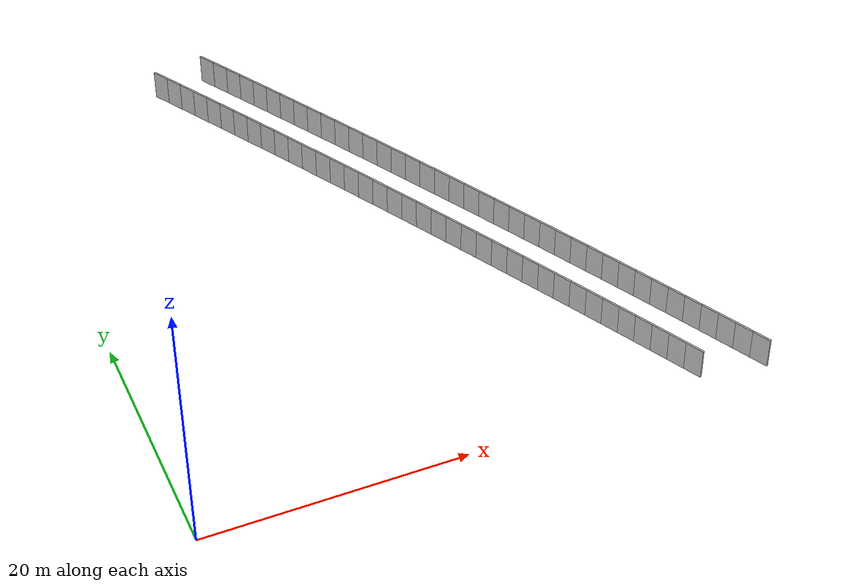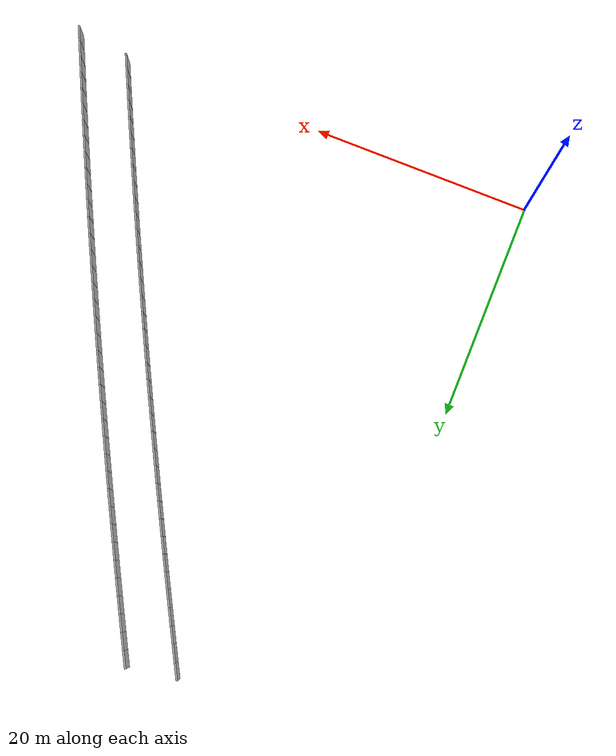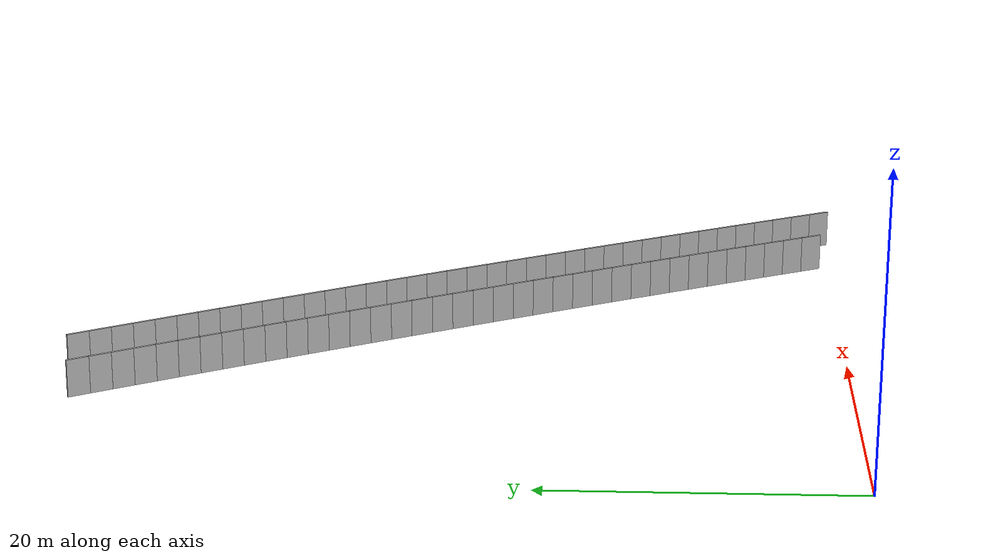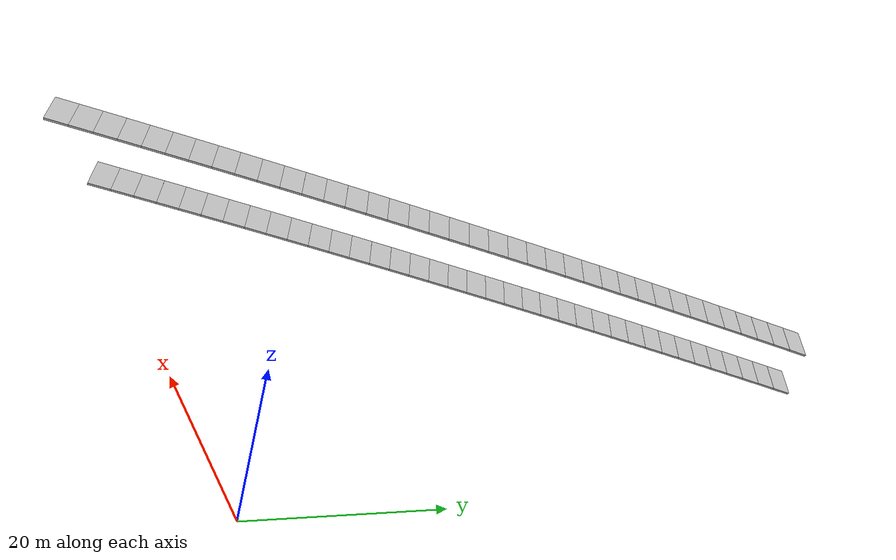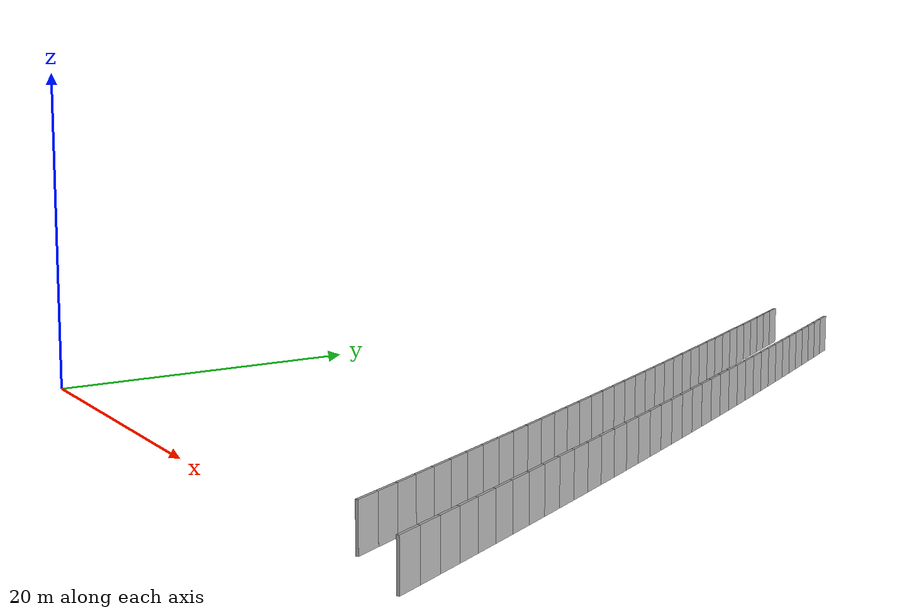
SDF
<?xml version="1.0" ?>
<sdf version="1.6">
  <model name="sps_4336">
    <pose frame="">0 0 0 0 -0 0</pose>
    <static>1</static>
    <self_collide>0</self_collide>
    <allow_auto_disable>0</allow_auto_disable>
    <link name="Wall10209">
      <kinematic>0</kinematic>
      <gravity>1</gravity>
      <self_collide>0</self_collide>
      <collision name="collision">
        <geometry>
          <box>
            <size>1.49655 0.15 2.5</size>
          </box>
        </geometry>
        <pose frame="">0 0 0 0 -0 0</pose>
      </collision>
      <visual name="visual">
        <geometry>
          <box>
            <size>1.49655 0.15 2.5</size>
          </box>
        </geometry>
        <pose frame="">0 0 0 0 -0 0</pose>
        <cast_shadows>1</cast_shadows>
        <transparency>0.0</transparency>
      </visual>
      <pose frame="">38.3077 1.14909 1.25 0 -0 2.0256</pose>
    </link>
    <link name="Wall10210">
      <kinematic>0</kinematic>
      <gravity>1</gravity>
      <self_collide>0</self_collide>
      <collision name="collision">
        <geometry>
          <box>
            <size>1.49631 0.15 2.5</size>
          </box>
        </geometry>
        <pose frame="">0 0 0 0 -0 0</pose>
      </collision>
      <visual name="visual">
        <geometry>
          <box>
            <size>1.49631 0.15 2.5</size>
          </box>
        </geometry>
        <pose frame="">0 0 0 0 -0 0</pose>
        <cast_shadows>1</cast_shadows>
        <transparency>0.0</transparency>
      </visual>
      <pose frame="">37.6493 2.4929 1.25 0 -0 2.02713</pose>
    </link>
    <link name="Wall10211">
      <kinematic>0</kinematic>
      <gravity>1</gravity>
      <self_collide>0</self_collide>
      <collision name="collision">
        <geometry>
          <box>
            <size>1.4966 0.15 2.5</size>
          </box>
        </geometry>
        <pose frame="">0 0 0 0 -0 0</pose>
      </collision>
      <visual name="visual">
        <geometry>
          <box>
            <size>1.4966 0.15 2.5</size>
          </box>
        </geometry>
        <pose frame="">0 0 0 0 -0 0</pose>
        <cast_shadows>1</cast_shadows>
        <transparency>0.0</transparency>
      </visual>
      <pose frame="">36.9889 3.83571 1.25 0 -0 2.02872</pose>
    </link>
    <link name="Wall10212">
      <kinematic>0</kinematic>
      <gravity>1</gravity>
      <self_collide>0</self_collide>
      <collision name="collision">
        <geometry>
          <box>
            <size>1.49645 0.15 2.5</size>
          </box>
        </geometry>
        <pose frame="">0 0 0 0 -0 0</pose>
      </collision>
      <visual name="visual">
        <geometry>
          <box>
            <size>1.49645 0.15 2.5</size>
          </box>
        </geometry>
        <pose frame="">0 0 0 0 -0 0</pose>
        <cast_shadows>1</cast_shadows>
        <transparency>0.0</transparency>
      </visual>
      <pose frame="">36.3262 5.1775 1.25 0 -0 2.03036</pose>
    </link>
    <link name="Wall10213">
      <kinematic>0</kinematic>
      <gravity>1</gravity>
      <self_collide>0</self_collide>
      <collision name="collision">
        <geometry>
          <box>
            <size>1.49649 0.15 2.5</size>
          </box>
        </geometry>
        <pose frame="">0 0 0 0 -0 0</pose>
      </collision>
      <visual name="visual">
        <geometry>
          <box>
            <size>1.49649 0.15 2.5</size>
          </box>
        </geometry>
        <pose frame="">0 0 0 0 -0 0</pose>
        <cast_shadows>1</cast_shadows>
        <transparency>0.0</transparency>
      </visual>
      <pose frame="">35.6614 6.5182 1.25 0 -0 2.03189</pose>
    </link>
    <link name="Wall10214">
      <kinematic>0</kinematic>
      <gravity>1</gravity>
      <self_collide>0</self_collide>
      <collision name="collision">
        <geometry>
          <box>
            <size>1.49663 0.15 2.5</size>
          </box>
        </geometry>
        <pose frame="">0 0 0 0 -0 0</pose>
      </collision>
      <visual name="visual">
        <geometry>
          <box>
            <size>1.49663 0.15 2.5</size>
          </box>
        </geometry>
        <pose frame="">0 0 0 0 -0 0</pose>
        <cast_shadows>1</cast_shadows>
        <transparency>0.0</transparency>
      </visual>
      <pose frame="">34.9943 7.85789 1.25 0 -0 2.03362</pose>
    </link>
    <link name="Wall10215">
      <kinematic>0</kinematic>
      <gravity>1</gravity>
      <self_collide>0</self_collide>
      <collision name="collision">
        <geometry>
          <box>
            <size>1.49646 0.15 2.5</size>
          </box>
        </geometry>
        <pose frame="">0 0 0 0 -0 0</pose>
      </collision>
      <visual name="visual">
        <geometry>
          <box>
            <size>1.49646 0.15 2.5</size>
          </box>
        </geometry>
        <pose frame="">0 0 0 0 -0 0</pose>
        <cast_shadows>1</cast_shadows>
        <transparency>0.0</transparency>
      </visual>
      <pose frame="">34.3252 9.19649 1.25 0 -0 2.03514</pose>
    </link>
    <link name="Wall10216">
      <kinematic>0</kinematic>
      <gravity>1</gravity>
      <self_collide>0</self_collide>
      <collision name="collision">
        <geometry>
          <box>
            <size>1.49647 0.15 2.5</size>
          </box>
        </geometry>
        <pose frame="">0 0 0 0 -0 0</pose>
      </collision>
      <visual name="visual">
        <geometry>
          <box>
            <size>1.49647 0.15 2.5</size>
          </box>
        </geometry>
        <pose frame="">0 0 0 0 -0 0</pose>
        <cast_shadows>1</cast_shadows>
        <transparency>0.0</transparency>
      </visual>
      <pose frame="">33.654 10.534 1.25 0 -0 2.03669</pose>
    </link>
    <link name="Wall10217">
      <kinematic>0</kinematic>
      <gravity>1</gravity>
      <self_collide>0</self_collide>
      <collision name="collision">
        <geometry>
          <box>
            <size>1.49664 0.15 2.5</size>
          </box>
        </geometry>
        <pose frame="">0 0 0 0 -0 0</pose>
      </collision>
      <visual name="visual">
        <geometry>
          <box>
            <size>1.49664 0.15 2.5</size>
          </box>
        </geometry>
        <pose frame="">0 0 0 0 -0 0</pose>
        <cast_shadows>1</cast_shadows>
        <transparency>0.0</transparency>
      </visual>
      <pose frame="">32.9806 11.8705 1.25 0 -0 2.03837</pose>
    </link>
    <link name="Wall10218">
      <kinematic>0</kinematic>
      <gravity>1</gravity>
      <self_collide>0</self_collide>
      <collision name="collision">
        <geometry>
          <box>
            <size>1.49643 0.15 2.5</size>
          </box>
        </geometry>
        <pose frame="">0 0 0 0 -0 0</pose>
      </collision>
      <visual name="visual">
        <geometry>
          <box>
            <size>1.49643 0.15 2.5</size>
          </box>
        </geometry>
        <pose frame="">0 0 0 0 -0 0</pose>
        <cast_shadows>1</cast_shadows>
        <transparency>0.0</transparency>
      </visual>
      <pose frame="">32.3051 13.2059 1.25 0 -0 2.03981</pose>
    </link>
    <link name="Wall10219">
      <kinematic>0</kinematic>
      <gravity>1</gravity>
      <self_collide>0</self_collide>
      <collision name="collision">
        <geometry>
          <box>
            <size>1.49623 0.15 2.5</size>
          </box>
        </geometry>
        <pose frame="">0 0 0 0 -0 0</pose>
      </collision>
      <visual name="visual">
        <geometry>
          <box>
            <size>1.49623 0.15 2.5</size>
          </box>
        </geometry>
        <pose frame="">0 0 0 0 -0 0</pose>
        <cast_shadows>1</cast_shadows>
        <transparency>0.0</transparency>
      </visual>
      <pose frame="">31.6275 14.54 1.25 0 -0 2.0417</pose>
    </link>
    <link name="Wall10220">
      <kinematic>0</kinematic>
      <gravity>1</gravity>
      <self_collide>0</self_collide>
      <collision name="collision">
        <geometry>
          <box>
            <size>1.49663 0.15 2.5</size>
          </box>
        </geometry>
        <pose frame="">0 0 0 0 -0 0</pose>
      </collision>
      <visual name="visual">
        <geometry>
          <box>
            <size>1.49663 0.15 2.5</size>
          </box>
        </geometry>
        <pose frame="">0 0 0 0 -0 0</pose>
        <cast_shadows>1</cast_shadows>
        <transparency>0.0</transparency>
      </visual>
      <pose frame="">30.9477 15.8731 1.25 0 -0 2.04303</pose>
    </link>
    <link name="Wall10221">
      <kinematic>0</kinematic>
      <gravity>1</gravity>
      <self_collide>0</self_collide>
      <collision name="collision">
        <geometry>
          <box>
            <size>1.49654 0.15 2.5</size>
          </box>
        </geometry>
        <pose frame="">0 0 0 0 -0 0</pose>
      </collision>
      <visual name="visual">
        <geometry>
          <box>
            <size>1.49654 0.15 2.5</size>
          </box>
        </geometry>
        <pose frame="">0 0 0 0 -0 0</pose>
        <cast_shadows>1</cast_shadows>
        <transparency>0.0</transparency>
      </visual>
      <pose frame="">30.2658 17.2053 1.25 0 -0 2.04471</pose>
    </link>
    <link name="Wall10222">
      <kinematic>0</kinematic>
      <gravity>1</gravity>
      <self_collide>0</self_collide>
      <collision name="collision">
        <geometry>
          <box>
            <size>1.49646 0.15 2.5</size>
          </box>
        </geometry>
        <pose frame="">0 0 0 0 -0 0</pose>
      </collision>
      <visual name="visual">
        <geometry>
          <box>
            <size>1.49646 0.15 2.5</size>
          </box>
        </geometry>
        <pose frame="">0 0 0 0 -0 0</pose>
        <cast_shadows>1</cast_shadows>
        <transparency>0.0</transparency>
      </visual>
      <pose frame="">29.5819 18.5364 1.25 0 -0 2.04612</pose>
    </link>
    <link name="Wall10223">
      <kinematic>0</kinematic>
      <gravity>1</gravity>
      <self_collide>0</self_collide>
      <collision name="collision">
        <geometry>
          <box>
            <size>1.49652 0.15 2.5</size>
          </box>
        </geometry>
        <pose frame="">0 0 0 0 -0 0</pose>
      </collision>
      <visual name="visual">
        <geometry>
          <box>
            <size>1.49652 0.15 2.5</size>
          </box>
        </geometry>
        <pose frame="">0 0 0 0 -0 0</pose>
        <cast_shadows>1</cast_shadows>
        <transparency>0.0</transparency>
      </visual>
      <pose frame="">28.8959 19.8664 1.25 0 -0 2.04789</pose>
    </link>
    <link name="Wall10224">
      <kinematic>0</kinematic>
      <gravity>1</gravity>
      <self_collide>0</self_collide>
      <collision name="collision">
        <geometry>
          <box>
            <size>1.49649 0.15 2.5</size>
          </box>
        </geometry>
        <pose frame="">0 0 0 0 -0 0</pose>
      </collision>
      <visual name="visual">
        <geometry>
          <box>
            <size>1.49649 0.15 2.5</size>
          </box>
        </geometry>
        <pose frame="">0 0 0 0 -0 0</pose>
        <cast_shadows>1</cast_shadows>
        <transparency>0.0</transparency>
      </visual>
      <pose frame="">28.2078 21.1953 1.25 0 -0 2.04927</pose>
    </link>
    <link name="Wall10225">
      <kinematic>0</kinematic>
      <gravity>1</gravity>
      <self_collide>0</self_collide>
      <collision name="collision">
        <geometry>
          <box>
            <size>1.49667 0.15 2.5</size>
          </box>
        </geometry>
        <pose frame="">0 0 0 0 -0 0</pose>
      </collision>
      <visual name="visual">
        <geometry>
          <box>
            <size>1.49667 0.15 2.5</size>
          </box>
        </geometry>
        <pose frame="">0 0 0 0 -0 0</pose>
        <cast_shadows>1</cast_shadows>
        <transparency>0.0</transparency>
      </visual>
      <pose frame="">27.5175 22.5232 1.25 0 -0 2.051</pose>
    </link>
    <link name="Wall10226">
      <kinematic>0</kinematic>
      <gravity>1</gravity>
      <self_collide>0</self_collide>
      <collision name="collision">
        <geometry>
          <box>
            <size>1.4964 0.15 2.5</size>
          </box>
        </geometry>
        <pose frame="">0 0 0 0 -0 0</pose>
      </collision>
      <visual name="visual">
        <geometry>
          <box>
            <size>1.4964 0.15 2.5</size>
          </box>
        </geometry>
        <pose frame="">0 0 0 0 -0 0</pose>
        <cast_shadows>1</cast_shadows>
        <transparency>0.0</transparency>
      </visual>
      <pose frame="">26.8252 23.85 1.25 0 -0 2.05243</pose>
    </link>
    <link name="Wall10227">
      <kinematic>0</kinematic>
      <gravity>1</gravity>
      <self_collide>0</self_collide>
      <collision name="collision">
        <geometry>
          <box>
            <size>1.49651 0.15 2.5</size>
          </box>
        </geometry>
        <pose frame="">0 0 0 0 -0 0</pose>
      </collision>
      <visual name="visual">
        <geometry>
          <box>
            <size>1.49651 0.15 2.5</size>
          </box>
        </geometry>
        <pose frame="">0 0 0 0 -0 0</pose>
        <cast_shadows>1</cast_shadows>
        <transparency>0.0</transparency>
      </visual>
      <pose frame="">26.1309 25.1756 1.25 0 -0 2.05424</pose>
    </link>
    <link name="Wall10228">
      <kinematic>0</kinematic>
      <gravity>1</gravity>
      <self_collide>0</self_collide>
      <collision name="collision">
        <geometry>
          <box>
            <size>1.4965 0.15 2.5</size>
          </box>
        </geometry>
        <pose frame="">0 0 0 0 -0 0</pose>
      </collision>
      <visual name="visual">
        <geometry>
          <box>
            <size>1.4965 0.15 2.5</size>
          </box>
        </geometry>
        <pose frame="">0 0 0 0 -0 0</pose>
        <cast_shadows>1</cast_shadows>
        <transparency>0.0</transparency>
      </visual>
      <pose frame="">25.4343 26.5001 1.25 0 -0 2.05571</pose>
    </link>
    <link name="Wall10229">
      <kinematic>0</kinematic>
      <gravity>1</gravity>
      <self_collide>0</self_collide>
      <collision name="collision">
        <geometry>
          <box>
            <size>1.49653 0.15 2.5</size>
          </box>
        </geometry>
        <pose frame="">0 0 0 0 -0 0</pose>
      </collision>
      <visual name="visual">
        <geometry>
          <box>
            <size>1.49653 0.15 2.5</size>
          </box>
        </geometry>
        <pose frame="">0 0 0 0 -0 0</pose>
        <cast_shadows>1</cast_shadows>
        <transparency>0.0</transparency>
      </visual>
      <pose frame="">24.7356 27.8235 1.25 0 -0 2.05741</pose>
    </link>
    <link name="Wall10230">
      <kinematic>0</kinematic>
      <gravity>1</gravity>
      <self_collide>0</self_collide>
      <collision name="collision">
        <geometry>
          <box>
            <size>1.49658 0.15 2.5</size>
          </box>
        </geometry>
        <pose frame="">0 0 0 0 -0 0</pose>
      </collision>
      <visual name="visual">
        <geometry>
          <box>
            <size>1.49658 0.15 2.5</size>
          </box>
        </geometry>
        <pose frame="">0 0 0 0 -0 0</pose>
        <cast_shadows>1</cast_shadows>
        <transparency>0.0</transparency>
      </visual>
      <pose frame="">24.0348 29.1458 1.25 0 -0 2.05887</pose>
    </link>
    <link name="Wall10231">
      <kinematic>0</kinematic>
      <gravity>1</gravity>
      <self_collide>0</self_collide>
      <collision name="collision">
        <geometry>
          <box>
            <size>1.49661 0.15 2.5</size>
          </box>
        </geometry>
        <pose frame="">0 0 0 0 -0 0</pose>
      </collision>
      <visual name="visual">
        <geometry>
          <box>
            <size>1.49661 0.15 2.5</size>
          </box>
        </geometry>
        <pose frame="">0 0 0 0 -0 0</pose>
        <cast_shadows>1</cast_shadows>
        <transparency>0.0</transparency>
      </visual>
      <pose frame="">23.332 30.4671 1.25 0 -0 2.06038</pose>
    </link>
    <link name="Wall10232">
      <kinematic>0</kinematic>
      <gravity>1</gravity>
      <self_collide>0</self_collide>
      <collision name="collision">
        <geometry>
          <box>
            <size>1.49657 0.15 2.5</size>
          </box>
        </geometry>
        <pose frame="">0 0 0 0 -0 0</pose>
      </collision>
      <visual name="visual">
        <geometry>
          <box>
            <size>1.49657 0.15 2.5</size>
          </box>
        </geometry>
        <pose frame="">0 0 0 0 -0 0</pose>
        <cast_shadows>1</cast_shadows>
        <transparency>0.0</transparency>
      </visual>
      <pose frame="">22.6271 31.7873 1.25 0 -0 2.06206</pose>
    </link>
    <link name="Wall10233">
      <kinematic>0</kinematic>
      <gravity>1</gravity>
      <self_collide>0</self_collide>
      <collision name="collision">
        <geometry>
          <box>
            <size>1.49628 0.15 2.5</size>
          </box>
        </geometry>
        <pose frame="">0 0 0 0 -0 0</pose>
      </collision>
      <visual name="visual">
        <geometry>
          <box>
            <size>1.49628 0.15 2.5</size>
          </box>
        </geometry>
        <pose frame="">0 0 0 0 -0 0</pose>
        <cast_shadows>1</cast_shadows>
        <transparency>0.0</transparency>
      </visual>
      <pose frame="">21.9201 33.1062 1.25 0 -0 2.06369</pose>
    </link>
    <link name="Wall10234">
      <kinematic>0</kinematic>
      <gravity>1</gravity>
      <self_collide>0</self_collide>
      <collision name="collision">
        <geometry>
          <box>
            <size>1.49668 0.15 2.5</size>
          </box>
        </geometry>
        <pose frame="">0 0 0 0 -0 0</pose>
      </collision>
      <visual name="visual">
        <geometry>
          <box>
            <size>1.49668 0.15 2.5</size>
          </box>
        </geometry>
        <pose frame="">0 0 0 0 -0 0</pose>
        <cast_shadows>1</cast_shadows>
        <transparency>0.0</transparency>
      </visual>
      <pose frame="">21.211 34.424 1.25 0 -0 2.06522</pose>
    </link>
    <link name="Wall10235">
      <kinematic>0</kinematic>
      <gravity>1</gravity>
      <self_collide>0</self_collide>
      <collision name="collision">
        <geometry>
          <box>
            <size>1.49651 0.15 2.5</size>
          </box>
        </geometry>
        <pose frame="">0 0 0 0 -0 0</pose>
      </collision>
      <visual name="visual">
        <geometry>
          <box>
            <size>1.49651 0.15 2.5</size>
          </box>
        </geometry>
        <pose frame="">0 0 0 0 -0 0</pose>
        <cast_shadows>1</cast_shadows>
        <transparency>0.0</transparency>
      </visual>
      <pose frame="">20.4997 35.7408 1.25 0 -0 2.06681</pose>
    </link>
    <link name="Wall10236">
      <kinematic>0</kinematic>
      <gravity>1</gravity>
      <self_collide>0</self_collide>
      <collision name="collision">
        <geometry>
          <box>
            <size>1.49651 0.15 2.5</size>
          </box>
        </geometry>
        <pose frame="">0 0 0 0 -0 0</pose>
      </collision>
      <visual name="visual">
        <geometry>
          <box>
            <size>1.49651 0.15 2.5</size>
          </box>
        </geometry>
        <pose frame="">0 0 0 0 -0 0</pose>
        <cast_shadows>1</cast_shadows>
        <transparency>0.0</transparency>
      </visual>
      <pose frame="">19.7865 37.0564 1.25 0 -0 2.06843</pose>
    </link>
    <link name="Wall10237">
      <kinematic>0</kinematic>
      <gravity>1</gravity>
      <self_collide>0</self_collide>
      <collision name="collision">
        <geometry>
          <box>
            <size>1.49634 0.15 2.5</size>
          </box>
        </geometry>
        <pose frame="">0 0 0 0 -0 0</pose>
      </collision>
      <visual name="visual">
        <geometry>
          <box>
            <size>1.49634 0.15 2.5</size>
          </box>
        </geometry>
        <pose frame="">0 0 0 0 -0 0</pose>
        <cast_shadows>1</cast_shadows>
        <transparency>0.0</transparency>
      </visual>
      <pose frame="">19.0712 38.3708 1.25 0 -0 2.06993</pose>
    </link>
    <link name="Wall10238">
      <kinematic>0</kinematic>
      <gravity>1</gravity>
      <self_collide>0</self_collide>
      <collision name="collision">
        <geometry>
          <box>
            <size>1.49651 0.15 2.5</size>
          </box>
        </geometry>
        <pose frame="">0 0 0 0 -0 0</pose>
      </collision>
      <visual name="visual">
        <geometry>
          <box>
            <size>1.49651 0.15 2.5</size>
          </box>
        </geometry>
        <pose frame="">0 0 0 0 -0 0</pose>
        <cast_shadows>1</cast_shadows>
        <transparency>0.0</transparency>
      </visual>
      <pose frame="">18.3538 39.6841 1.25 0 -0 2.0715</pose>
    </link>
    <link name="Wall10239">
      <kinematic>0</kinematic>
      <gravity>1</gravity>
      <self_collide>0</self_collide>
      <collision name="collision">
        <geometry>
          <box>
            <size>1.49655 0.15 2.5</size>
          </box>
        </geometry>
        <pose frame="">0 0 0 0 -0 0</pose>
      </collision>
      <visual name="visual">
        <geometry>
          <box>
            <size>1.49655 0.15 2.5</size>
          </box>
        </geometry>
        <pose frame="">0 0 0 0 -0 0</pose>
        <cast_shadows>1</cast_shadows>
        <transparency>0.0</transparency>
      </visual>
      <pose frame="">17.6344 40.9963 1.25 0 -0 2.07316</pose>
    </link>
    <link name="Wall10240">
      <kinematic>0</kinematic>
      <gravity>1</gravity>
      <self_collide>0</self_collide>
      <collision name="collision">
        <geometry>
          <box>
            <size>1.49639 0.15 2.5</size>
          </box>
        </geometry>
        <pose frame="">0 0 0 0 -0 0</pose>
      </collision>
      <visual name="visual">
        <geometry>
          <box>
            <size>1.49639 0.15 2.5</size>
          </box>
        </geometry>
        <pose frame="">0 0 0 0 -0 0</pose>
        <cast_shadows>1</cast_shadows>
        <transparency>0.0</transparency>
      </visual>
      <pose frame="">16.9128 42.3073 1.25 0 -0 2.07475</pose>
    </link>
    <link name="Wall10241">
      <kinematic>0</kinematic>
      <gravity>1</gravity>
      <self_collide>0</self_collide>
      <collision name="collision">
        <geometry>
          <box>
            <size>1.49651 0.15 2.5</size>
          </box>
        </geometry>
        <pose frame="">0 0 0 0 -0 0</pose>
      </collision>
      <visual name="visual">
        <geometry>
          <box>
            <size>1.49651 0.15 2.5</size>
          </box>
        </geometry>
        <pose frame="">0 0 0 0 -0 0</pose>
        <cast_shadows>1</cast_shadows>
        <transparency>0.0</transparency>
      </visual>
      <pose frame="">16.1892 43.6172 1.25 0 -0 2.07624</pose>
    </link>
    <link name="Wall10242">
      <kinematic>0</kinematic>
      <gravity>1</gravity>
      <self_collide>0</self_collide>
      <collision name="collision">
        <geometry>
          <box>
            <size>1.49681 0.15 2.5</size>
          </box>
        </geometry>
        <pose frame="">0 0 0 0 -0 0</pose>
      </collision>
      <visual name="visual">
        <geometry>
          <box>
            <size>1.49681 0.15 2.5</size>
          </box>
        </geometry>
        <pose frame="">0 0 0 0 -0 0</pose>
        <cast_shadows>1</cast_shadows>
        <transparency>0.0</transparency>
      </visual>
      <pose frame="">15.4634 44.9261 1.25 0 -0 2.07795</pose>
    </link>
    <link name="Wall10243">
      <kinematic>0</kinematic>
      <gravity>1</gravity>
      <self_collide>0</self_collide>
      <collision name="collision">
        <geometry>
          <box>
            <size>1.49648 0.15 2.5</size>
          </box>
        </geometry>
        <pose frame="">0 0 0 0 -0 0</pose>
      </collision>
      <visual name="visual">
        <geometry>
          <box>
            <size>1.49648 0.15 2.5</size>
          </box>
        </geometry>
        <pose frame="">0 0 0 0 -0 0</pose>
        <cast_shadows>1</cast_shadows>
        <transparency>0.0</transparency>
      </visual>
      <pose frame="">14.7355 46.2338 1.25 0 -0 2.07948</pose>
    </link>
    <link name="Wall10244">
      <kinematic>0</kinematic>
      <gravity>1</gravity>
      <self_collide>0</self_collide>
      <collision name="collision">
        <geometry>
          <box>
            <size>1.49609 0.15 2.5</size>
          </box>
        </geometry>
        <pose frame="">0 0 0 0 -0 0</pose>
      </collision>
      <visual name="visual">
        <geometry>
          <box>
            <size>1.49609 0.15 2.5</size>
          </box>
        </geometry>
        <pose frame="">0 0 0 0 -0 0</pose>
        <cast_shadows>1</cast_shadows>
        <transparency>0.0</transparency>
      </visual>
      <pose frame="">14.0055 47.5399 1.25 0 -0 2.08144</pose>
    </link>
    <link name="Wall10245">
      <kinematic>0</kinematic>
      <gravity>1</gravity>
      <self_collide>0</self_collide>
      <collision name="collision">
        <geometry>
          <box>
            <size>1.49665 0.15 2.5</size>
          </box>
        </geometry>
        <pose frame="">0 0 0 0 -0 0</pose>
      </collision>
      <visual name="visual">
        <geometry>
          <box>
            <size>1.49665 0.15 2.5</size>
          </box>
        </geometry>
        <pose frame="">0 0 0 0 -0 0</pose>
        <cast_shadows>1</cast_shadows>
        <transparency>0.0</transparency>
      </visual>
      <pose frame="">13.2732 48.8449 1.25 0 -0 2.08277</pose>
    </link>
    <link name="Wall10804">
      <kinematic>0</kinematic>
      <gravity>1</gravity>
      <self_collide>0</self_collide>
      <collision name="collision">
        <geometry>
          <box>
            <size>1.50298 0.15 2.5</size>
          </box>
        </geometry>
        <pose frame="">0 0 0 0 -0 0</pose>
      </collision>
      <visual name="visual">
        <geometry>
          <box>
            <size>1.50298 0.15 2.5</size>
          </box>
        </geometry>
        <pose frame="">0 0 0 0 -0 0</pose>
        <cast_shadows>1</cast_shadows>
        <transparency>0.0</transparency>
      </visual>
      <pose frame="">43.3434 0.265578 1.25 0 -0 2.0226</pose>
    </link>
    <link name="Wall10805">
      <kinematic>0</kinematic>
      <gravity>1</gravity>
      <self_collide>0</self_collide>
      <collision name="collision">
        <geometry>
          <box>
            <size>1.50312 0.15 2.5</size>
          </box>
        </geometry>
        <pose frame="">0 0 0 0 -0 0</pose>
      </collision>
      <visual name="visual">
        <geometry>
          <box>
            <size>1.50312 0.15 2.5</size>
          </box>
        </geometry>
        <pose frame="">0 0 0 0 -0 0</pose>
        <cast_shadows>1</cast_shadows>
        <transparency>0.0</transparency>
      </visual>
      <pose frame="">42.6863 1.61738 1.25 0 -0 2.02391</pose>
    </link>
    <link name="Wall10806">
      <kinematic>0</kinematic>
      <gravity>1</gravity>
      <self_collide>0</self_collide>
      <collision name="collision">
        <geometry>
          <box>
            <size>1.50302 0.15 2.5</size>
          </box>
        </geometry>
        <pose frame="">0 0 0 0 -0 0</pose>
      </collision>
      <visual name="visual">
        <geometry>
          <box>
            <size>1.50302 0.15 2.5</size>
          </box>
        </geometry>
        <pose frame="">0 0 0 0 -0 0</pose>
        <cast_shadows>1</cast_shadows>
        <transparency>0.0</transparency>
      </visual>
      <pose frame="">42.0271 2.96818 1.25 0 -0 2.02571</pose>
    </link>
    <link name="Wall10807">
      <kinematic>0</kinematic>
      <gravity>1</gravity>
      <self_collide>0</self_collide>
      <collision name="collision">
        <geometry>
          <box>
            <size>1.50308 0.15 2.5</size>
          </box>
        </geometry>
        <pose frame="">0 0 0 0 -0 0</pose>
      </collision>
      <visual name="visual">
        <geometry>
          <box>
            <size>1.50308 0.15 2.5</size>
          </box>
        </geometry>
        <pose frame="">0 0 0 0 -0 0</pose>
        <cast_shadows>1</cast_shadows>
        <transparency>0.0</transparency>
      </visual>
      <pose frame="">41.3657 4.31789 1.25 0 -0 2.02718</pose>
    </link>
    <link name="Wall10808">
      <kinematic>0</kinematic>
      <gravity>1</gravity>
      <self_collide>0</self_collide>
      <collision name="collision">
        <geometry>
          <box>
            <size>1.50312 0.15 2.5</size>
          </box>
        </geometry>
        <pose frame="">0 0 0 0 -0 0</pose>
      </collision>
      <visual name="visual">
        <geometry>
          <box>
            <size>1.50312 0.15 2.5</size>
          </box>
        </geometry>
        <pose frame="">0 0 0 0 -0 0</pose>
        <cast_shadows>1</cast_shadows>
        <transparency>0.0</transparency>
      </visual>
      <pose frame="">40.7021 5.66661 1.25 0 -0 2.0288</pose>
    </link>
    <link name="Wall10809">
      <kinematic>0</kinematic>
      <gravity>1</gravity>
      <self_collide>0</self_collide>
      <collision name="collision">
        <geometry>
          <box>
            <size>1.50313 0.15 2.5</size>
          </box>
        </geometry>
        <pose frame="">0 0 0 0 -0 0</pose>
      </collision>
      <visual name="visual">
        <geometry>
          <box>
            <size>1.50313 0.15 2.5</size>
          </box>
        </geometry>
        <pose frame="">0 0 0 0 -0 0</pose>
        <cast_shadows>1</cast_shadows>
        <transparency>0.0</transparency>
      </visual>
      <pose frame="">40.0365 7.0143 1.25 0 -0 2.03038</pose>
    </link>
    <link name="Wall10810">
      <kinematic>0</kinematic>
      <gravity>1</gravity>
      <self_collide>0</self_collide>
      <collision name="collision">
        <geometry>
          <box>
            <size>1.50302 0.15 2.5</size>
          </box>
        </geometry>
        <pose frame="">0 0 0 0 -0 0</pose>
      </collision>
      <visual name="visual">
        <geometry>
          <box>
            <size>1.50302 0.15 2.5</size>
          </box>
        </geometry>
        <pose frame="">0 0 0 0 -0 0</pose>
        <cast_shadows>1</cast_shadows>
        <transparency>0.0</transparency>
      </visual>
      <pose frame="">39.3687 8.36088 1.25 0 -0 2.03196</pose>
    </link>
    <link name="Wall10811">
      <kinematic>0</kinematic>
      <gravity>1</gravity>
      <self_collide>0</self_collide>
      <collision name="collision">
        <geometry>
          <box>
            <size>1.5029 0.15 2.5</size>
          </box>
        </geometry>
        <pose frame="">0 0 0 0 -0 0</pose>
      </collision>
      <visual name="visual">
        <geometry>
          <box>
            <size>1.5029 0.15 2.5</size>
          </box>
        </geometry>
        <pose frame="">0 0 0 0 -0 0</pose>
        <cast_shadows>1</cast_shadows>
        <transparency>0.0</transparency>
      </visual>
      <pose frame="">38.6988 9.70628 1.25 0 -0 2.03363</pose>
    </link>
    <link name="Wall10812">
      <kinematic>0</kinematic>
      <gravity>1</gravity>
      <self_collide>0</self_collide>
      <collision name="collision">
        <geometry>
          <box>
            <size>1.50315 0.15 2.5</size>
          </box>
        </geometry>
        <pose frame="">0 0 0 0 -0 0</pose>
      </collision>
      <visual name="visual">
        <geometry>
          <box>
            <size>1.50315 0.15 2.5</size>
          </box>
        </geometry>
        <pose frame="">0 0 0 0 -0 0</pose>
        <cast_shadows>1</cast_shadows>
        <transparency>0.0</transparency>
      </visual>
      <pose frame="">38.0267 11.0507 1.25 0 -0 2.03513</pose>
    </link>
    <link name="Wall10813">
      <kinematic>0</kinematic>
      <gravity>1</gravity>
      <self_collide>0</self_collide>
      <collision name="collision">
        <geometry>
          <box>
            <size>1.50321 0.15 2.5</size>
          </box>
        </geometry>
        <pose frame="">0 0 0 0 -0 0</pose>
      </collision>
      <visual name="visual">
        <geometry>
          <box>
            <size>1.50321 0.15 2.5</size>
          </box>
        </geometry>
        <pose frame="">0 0 0 0 -0 0</pose>
        <cast_shadows>1</cast_shadows>
        <transparency>0.0</transparency>
      </visual>
      <pose frame="">37.3525 12.3942 1.25 0 -0 2.03666</pose>
    </link>
    <link name="Wall10814">
      <kinematic>0</kinematic>
      <gravity>1</gravity>
      <self_collide>0</self_collide>
      <collision name="collision">
        <geometry>
          <box>
            <size>1.50308 0.15 2.5</size>
          </box>
        </geometry>
        <pose frame="">0 0 0 0 -0 0</pose>
      </collision>
      <visual name="visual">
        <geometry>
          <box>
            <size>1.50308 0.15 2.5</size>
          </box>
        </geometry>
        <pose frame="">0 0 0 0 -0 0</pose>
        <cast_shadows>1</cast_shadows>
        <transparency>0.0</transparency>
      </visual>
      <pose frame="">36.6762 13.7366 1.25 0 -0 2.03829</pose>
    </link>
    <link name="Wall10815">
      <kinematic>0</kinematic>
      <gravity>1</gravity>
      <self_collide>0</self_collide>
      <collision name="collision">
        <geometry>
          <box>
            <size>1.50285 0.15 2.5</size>
          </box>
        </geometry>
        <pose frame="">0 0 0 0 -0 0</pose>
      </collision>
      <visual name="visual">
        <geometry>
          <box>
            <size>1.50285 0.15 2.5</size>
          </box>
        </geometry>
        <pose frame="">0 0 0 0 -0 0</pose>
        <cast_shadows>1</cast_shadows>
        <transparency>0.0</transparency>
      </visual>
      <pose frame="">35.9977 15.0777 1.25 0 -0 2.04006</pose>
    </link>
    <link name="Wall10816">
      <kinematic>0</kinematic>
      <gravity>1</gravity>
      <self_collide>0</self_collide>
      <collision name="collision">
        <geometry>
          <box>
            <size>1.50302 0.15 2.5</size>
          </box>
        </geometry>
        <pose frame="">0 0 0 0 -0 0</pose>
      </collision>
      <visual name="visual">
        <geometry>
          <box>
            <size>1.50302 0.15 2.5</size>
          </box>
        </geometry>
        <pose frame="">0 0 0 0 -0 0</pose>
        <cast_shadows>1</cast_shadows>
        <transparency>0.0</transparency>
      </visual>
      <pose frame="">35.3171 16.4177 1.25 0 -0 2.04145</pose>
    </link>
    <link name="Wall10817">
      <kinematic>0</kinematic>
      <gravity>1</gravity>
      <self_collide>0</self_collide>
      <collision name="collision">
        <geometry>
          <box>
            <size>1.50318 0.15 2.5</size>
          </box>
        </geometry>
        <pose frame="">0 0 0 0 -0 0</pose>
      </collision>
      <visual name="visual">
        <geometry>
          <box>
            <size>1.50318 0.15 2.5</size>
          </box>
        </geometry>
        <pose frame="">0 0 0 0 -0 0</pose>
        <cast_shadows>1</cast_shadows>
        <transparency>0.0</transparency>
      </visual>
      <pose frame="">34.6344 17.7568 1.25 0 -0 2.04309</pose>
    </link>
    <link name="Wall10818">
      <kinematic>0</kinematic>
      <gravity>1</gravity>
      <self_collide>0</self_collide>
      <collision name="collision">
        <geometry>
          <box>
            <size>1.50314 0.15 2.5</size>
          </box>
        </geometry>
        <pose frame="">0 0 0 0 -0 0</pose>
      </collision>
      <visual name="visual">
        <geometry>
          <box>
            <size>1.50314 0.15 2.5</size>
          </box>
        </geometry>
        <pose frame="">0 0 0 0 -0 0</pose>
        <cast_shadows>1</cast_shadows>
        <transparency>0.0</transparency>
      </visual>
      <pose frame="">33.9495 19.0949 1.25 0 -0 2.04456</pose>
    </link>
    <link name="Wall10819">
      <kinematic>0</kinematic>
      <gravity>1</gravity>
      <self_collide>0</self_collide>
      <collision name="collision">
        <geometry>
          <box>
            <size>1.5029 0.15 2.5</size>
          </box>
        </geometry>
        <pose frame="">0 0 0 0 -0 0</pose>
      </collision>
      <visual name="visual">
        <geometry>
          <box>
            <size>1.5029 0.15 2.5</size>
          </box>
        </geometry>
        <pose frame="">0 0 0 0 -0 0</pose>
        <cast_shadows>1</cast_shadows>
        <transparency>0.0</transparency>
      </visual>
      <pose frame="">33.2627 20.4318 1.25 0 -0 2.04629</pose>
    </link>
    <link name="Wall10820">
      <kinematic>0</kinematic>
      <gravity>1</gravity>
      <self_collide>0</self_collide>
      <collision name="collision">
        <geometry>
          <box>
            <size>1.50326 0.15 2.5</size>
          </box>
        </geometry>
        <pose frame="">0 0 0 0 -0 0</pose>
      </collision>
      <visual name="visual">
        <geometry>
          <box>
            <size>1.50326 0.15 2.5</size>
          </box>
        </geometry>
        <pose frame="">0 0 0 0 -0 0</pose>
        <cast_shadows>1</cast_shadows>
        <transparency>0.0</transparency>
      </visual>
      <pose frame="">32.5736 21.7676 1.25 0 -0 2.04781</pose>
    </link>
    <link name="Wall10821">
      <kinematic>0</kinematic>
      <gravity>1</gravity>
      <self_collide>0</self_collide>
      <collision name="collision">
        <geometry>
          <box>
            <size>1.50296 0.15 2.5</size>
          </box>
        </geometry>
        <pose frame="">0 0 0 0 -0 0</pose>
      </collision>
      <visual name="visual">
        <geometry>
          <box>
            <size>1.50296 0.15 2.5</size>
          </box>
        </geometry>
        <pose frame="">0 0 0 0 -0 0</pose>
        <cast_shadows>1</cast_shadows>
        <transparency>0.0</transparency>
      </visual>
      <pose frame="">31.8825 23.1024 1.25 0 -0 2.04928</pose>
    </link>
    <link name="Wall10822">
      <kinematic>0</kinematic>
      <gravity>1</gravity>
      <self_collide>0</self_collide>
      <collision name="collision">
        <geometry>
          <box>
            <size>1.50303 0.15 2.5</size>
          </box>
        </geometry>
        <pose frame="">0 0 0 0 -0 0</pose>
      </collision>
      <visual name="visual">
        <geometry>
          <box>
            <size>1.50303 0.15 2.5</size>
          </box>
        </geometry>
        <pose frame="">0 0 0 0 -0 0</pose>
        <cast_shadows>1</cast_shadows>
        <transparency>0.0</transparency>
      </visual>
      <pose frame="">31.1893 24.436 1.25 0 -0 2.05104</pose>
    </link>
    <link name="Wall10823">
      <kinematic>0</kinematic>
      <gravity>1</gravity>
      <self_collide>0</self_collide>
      <collision name="collision">
        <geometry>
          <box>
            <size>1.50288 0.15 2.5</size>
          </box>
        </geometry>
        <pose frame="">0 0 0 0 -0 0</pose>
      </collision>
      <visual name="visual">
        <geometry>
          <box>
            <size>1.50288 0.15 2.5</size>
          </box>
        </geometry>
        <pose frame="">0 0 0 0 -0 0</pose>
        <cast_shadows>1</cast_shadows>
        <transparency>0.0</transparency>
      </visual>
      <pose frame="">30.4939 25.7684 1.25 0 -0 2.05261</pose>
    </link>
    <link name="Wall10824">
      <kinematic>0</kinematic>
      <gravity>1</gravity>
      <self_collide>0</self_collide>
      <collision name="collision">
        <geometry>
          <box>
            <size>1.5032 0.15 2.5</size>
          </box>
        </geometry>
        <pose frame="">0 0 0 0 -0 0</pose>
      </collision>
      <visual name="visual">
        <geometry>
          <box>
            <size>1.5032 0.15 2.5</size>
          </box>
        </geometry>
        <pose frame="">0 0 0 0 -0 0</pose>
        <cast_shadows>1</cast_shadows>
        <transparency>0.0</transparency>
      </visual>
      <pose frame="">29.7963 27.0998 1.25 0 -0 2.05415</pose>
    </link>
    <link name="Wall10825">
      <kinematic>0</kinematic>
      <gravity>1</gravity>
      <self_collide>0</self_collide>
      <collision name="collision">
        <geometry>
          <box>
            <size>1.50308 0.15 2.5</size>
          </box>
        </geometry>
        <pose frame="">0 0 0 0 -0 0</pose>
      </collision>
      <visual name="visual">
        <geometry>
          <box>
            <size>1.50308 0.15 2.5</size>
          </box>
        </geometry>
        <pose frame="">0 0 0 0 -0 0</pose>
        <cast_shadows>1</cast_shadows>
        <transparency>0.0</transparency>
      </visual>
      <pose frame="">29.0968 28.4302 1.25 0 -0 2.05566</pose>
    </link>
    <link name="Wall10826">
      <kinematic>0</kinematic>
      <gravity>1</gravity>
      <self_collide>0</self_collide>
      <collision name="collision">
        <geometry>
          <box>
            <size>1.50313 0.15 2.5</size>
          </box>
        </geometry>
        <pose frame="">0 0 0 0 -0 0</pose>
      </collision>
      <visual name="visual">
        <geometry>
          <box>
            <size>1.50313 0.15 2.5</size>
          </box>
        </geometry>
        <pose frame="">0 0 0 0 -0 0</pose>
        <cast_shadows>1</cast_shadows>
        <transparency>0.0</transparency>
      </visual>
      <pose frame="">28.3952 29.7595 1.25 0 -0 2.0572</pose>
    </link>
    <link name="Wall10827">
      <kinematic>0</kinematic>
      <gravity>1</gravity>
      <self_collide>0</self_collide>
      <collision name="collision">
        <geometry>
          <box>
            <size>1.50317 0.15 2.5</size>
          </box>
        </geometry>
        <pose frame="">0 0 0 0 -0 0</pose>
      </collision>
      <visual name="visual">
        <geometry>
          <box>
            <size>1.50317 0.15 2.5</size>
          </box>
        </geometry>
        <pose frame="">0 0 0 0 -0 0</pose>
        <cast_shadows>1</cast_shadows>
        <transparency>0.0</transparency>
      </visual>
      <pose frame="">27.6913 31.0877 1.25 0 -0 2.05898</pose>
    </link>
    <link name="Wall10828">
      <kinematic>0</kinematic>
      <gravity>1</gravity>
      <self_collide>0</self_collide>
      <collision name="collision">
        <geometry>
          <box>
            <size>1.50297 0.15 2.5</size>
          </box>
        </geometry>
        <pose frame="">0 0 0 0 -0 0</pose>
      </collision>
      <visual name="visual">
        <geometry>
          <box>
            <size>1.50297 0.15 2.5</size>
          </box>
        </geometry>
        <pose frame="">0 0 0 0 -0 0</pose>
        <cast_shadows>1</cast_shadows>
        <transparency>0.0</transparency>
      </visual>
      <pose frame="">26.9854 32.4147 1.25 0 -0 2.06038</pose>
    </link>
    <link name="Wall10829">
      <kinematic>0</kinematic>
      <gravity>1</gravity>
      <self_collide>0</self_collide>
      <collision name="collision">
        <geometry>
          <box>
            <size>1.50318 0.15 2.5</size>
          </box>
        </geometry>
        <pose frame="">0 0 0 0 -0 0</pose>
      </collision>
      <visual name="visual">
        <geometry>
          <box>
            <size>1.50318 0.15 2.5</size>
          </box>
        </geometry>
        <pose frame="">0 0 0 0 -0 0</pose>
        <cast_shadows>1</cast_shadows>
        <transparency>0.0</transparency>
      </visual>
      <pose frame="">26.2775 33.7406 1.25 0 -0 2.0621</pose>
    </link>
    <link name="Wall10830">
      <kinematic>0</kinematic>
      <gravity>1</gravity>
      <self_collide>0</self_collide>
      <collision name="collision">
        <geometry>
          <box>
            <size>1.50314 0.15 2.5</size>
          </box>
        </geometry>
        <pose frame="">0 0 0 0 -0 0</pose>
      </collision>
      <visual name="visual">
        <geometry>
          <box>
            <size>1.50314 0.15 2.5</size>
          </box>
        </geometry>
        <pose frame="">0 0 0 0 -0 0</pose>
        <cast_shadows>1</cast_shadows>
        <transparency>0.0</transparency>
      </visual>
      <pose frame="">25.5673 35.0654 1.25 0 -0 2.06368</pose>
    </link>
    <link name="Wall10831">
      <kinematic>0</kinematic>
      <gravity>1</gravity>
      <self_collide>0</self_collide>
      <collision name="collision">
        <geometry>
          <box>
            <size>1.50299 0.15 2.5</size>
          </box>
        </geometry>
        <pose frame="">0 0 0 0 -0 0</pose>
      </collision>
      <visual name="visual">
        <geometry>
          <box>
            <size>1.50299 0.15 2.5</size>
          </box>
        </geometry>
        <pose frame="">0 0 0 0 -0 0</pose>
        <cast_shadows>1</cast_shadows>
        <transparency>0.0</transparency>
      </visual>
      <pose frame="">24.855 36.389 1.25 0 -0 2.06521</pose>
    </link>
    <link name="Wall10832">
      <kinematic>0</kinematic>
      <gravity>1</gravity>
      <self_collide>0</self_collide>
      <collision name="collision">
        <geometry>
          <box>
            <size>1.50317 0.15 2.5</size>
          </box>
        </geometry>
        <pose frame="">0 0 0 0 -0 0</pose>
      </collision>
      <visual name="visual">
        <geometry>
          <box>
            <size>1.50317 0.15 2.5</size>
          </box>
        </geometry>
        <pose frame="">0 0 0 0 -0 0</pose>
        <cast_shadows>1</cast_shadows>
        <transparency>0.0</transparency>
      </visual>
      <pose frame="">24.1407 37.7115 1.25 0 -0 2.06681</pose>
    </link>
    <link name="Wall10833">
      <kinematic>0</kinematic>
      <gravity>1</gravity>
      <self_collide>0</self_collide>
      <collision name="collision">
        <geometry>
          <box>
            <size>1.50306 0.15 2.5</size>
          </box>
        </geometry>
        <pose frame="">0 0 0 0 -0 0</pose>
      </collision>
      <visual name="visual">
        <geometry>
          <box>
            <size>1.50306 0.15 2.5</size>
          </box>
        </geometry>
        <pose frame="">0 0 0 0 -0 0</pose>
        <cast_shadows>1</cast_shadows>
        <transparency>0.0</transparency>
      </visual>
      <pose frame="">23.4243 39.0329 1.25 0 -0 2.06837</pose>
    </link>
    <link name="Wall10834">
      <kinematic>0</kinematic>
      <gravity>1</gravity>
      <self_collide>0</self_collide>
      <collision name="collision">
        <geometry>
          <box>
            <size>1.5032 0.15 2.5</size>
          </box>
        </geometry>
        <pose frame="">0 0 0 0 -0 0</pose>
      </collision>
      <visual name="visual">
        <geometry>
          <box>
            <size>1.5032 0.15 2.5</size>
          </box>
        </geometry>
        <pose frame="">0 0 0 0 -0 0</pose>
        <cast_shadows>1</cast_shadows>
        <transparency>0.0</transparency>
      </visual>
      <pose frame="">22.7058 40.3532 1.25 0 -0 2.06999</pose>
    </link>
    <link name="Wall10835">
      <kinematic>0</kinematic>
      <gravity>1</gravity>
      <self_collide>0</self_collide>
      <collision name="collision">
        <geometry>
          <box>
            <size>1.50296 0.15 2.5</size>
          </box>
        </geometry>
        <pose frame="">0 0 0 0 -0 0</pose>
      </collision>
      <visual name="visual">
        <geometry>
          <box>
            <size>1.50296 0.15 2.5</size>
          </box>
        </geometry>
        <pose frame="">0 0 0 0 -0 0</pose>
        <cast_shadows>1</cast_shadows>
        <transparency>0.0</transparency>
      </visual>
      <pose frame="">21.9853 41.6723 1.25 0 -0 2.07156</pose>
    </link>
    <link name="Wall10836">
      <kinematic>0</kinematic>
      <gravity>1</gravity>
      <self_collide>0</self_collide>
      <collision name="collision">
        <geometry>
          <box>
            <size>1.50304 0.15 2.5</size>
          </box>
        </geometry>
        <pose frame="">0 0 0 0 -0 0</pose>
      </collision>
      <visual name="visual">
        <geometry>
          <box>
            <size>1.50304 0.15 2.5</size>
          </box>
        </geometry>
        <pose frame="">0 0 0 0 -0 0</pose>
        <cast_shadows>1</cast_shadows>
        <transparency>0.0</transparency>
      </visual>
      <pose frame="">21.2627 42.9902 1.25 0 -0 2.0731</pose>
    </link>
    <link name="Wall10837">
      <kinematic>0</kinematic>
      <gravity>1</gravity>
      <self_collide>0</self_collide>
      <collision name="collision">
        <geometry>
          <box>
            <size>1.50306 0.15 2.5</size>
          </box>
        </geometry>
        <pose frame="">0 0 0 0 -0 0</pose>
      </collision>
      <visual name="visual">
        <geometry>
          <box>
            <size>1.50306 0.15 2.5</size>
          </box>
        </geometry>
        <pose frame="">0 0 0 0 -0 0</pose>
        <cast_shadows>1</cast_shadows>
        <transparency>0.0</transparency>
      </visual>
      <pose frame="">20.538 44.307 1.25 0 -0 2.07472</pose>
    </link>
    <link name="Wall10838">
      <kinematic>0</kinematic>
      <gravity>1</gravity>
      <self_collide>0</self_collide>
      <collision name="collision">
        <geometry>
          <box>
            <size>1.50308 0.15 2.5</size>
          </box>
        </geometry>
        <pose frame="">0 0 0 0 -0 0</pose>
      </collision>
      <visual name="visual">
        <geometry>
          <box>
            <size>1.50308 0.15 2.5</size>
          </box>
        </geometry>
        <pose frame="">0 0 0 0 -0 0</pose>
        <cast_shadows>1</cast_shadows>
        <transparency>0.0</transparency>
      </visual>
      <pose frame="">19.8111 45.6226 1.25 0 -0 2.07642</pose>
    </link>
    <link name="Wall10839">
      <kinematic>0</kinematic>
      <gravity>1</gravity>
      <self_collide>0</self_collide>
      <collision name="collision">
        <geometry>
          <box>
            <size>1.50287 0.15 2.5</size>
          </box>
        </geometry>
        <pose frame="">0 0 0 0 -0 0</pose>
      </collision>
      <visual name="visual">
        <geometry>
          <box>
            <size>1.50287 0.15 2.5</size>
          </box>
        </geometry>
        <pose frame="">0 0 0 0 -0 0</pose>
        <cast_shadows>1</cast_shadows>
        <transparency>0.0</transparency>
      </visual>
      <pose frame="">19.0821 46.937 1.25 0 -0 2.07785</pose>
    </link>
    <link name="Wall10840">
      <kinematic>0</kinematic>
      <gravity>1</gravity>
      <self_collide>0</self_collide>
      <collision name="collision">
        <geometry>
          <box>
            <size>1.50273 0.15 2.5</size>
          </box>
        </geometry>
        <pose frame="">0 0 0 0 -0 0</pose>
      </collision>
      <visual name="visual">
        <geometry>
          <box>
            <size>1.50273 0.15 2.5</size>
          </box>
        </geometry>
        <pose frame="">0 0 0 0 -0 0</pose>
        <cast_shadows>1</cast_shadows>
        <transparency>0.0</transparency>
      </visual>
      <pose frame="">18.3511 48.25 1.25 0 -0 2.07985</pose>
    </link>
    <link name="Wall10841">
      <kinematic>0</kinematic>
      <gravity>1</gravity>
      <self_collide>0</self_collide>
      <collision name="collision">
        <geometry>
          <box>
            <size>1.50312 0.15 2.5</size>
          </box>
        </geometry>
        <pose frame="">0 0 0 0 -0 0</pose>
      </collision>
      <visual name="visual">
        <geometry>
          <box>
            <size>1.50312 0.15 2.5</size>
          </box>
        </geometry>
        <pose frame="">0 0 0 0 -0 0</pose>
        <cast_shadows>1</cast_shadows>
        <transparency>0.0</transparency>
      </visual>
      <pose frame="">17.6178 49.5619 1.25 0 -0 2.08115</pose>
    </link>
  </model>
</sdf>
